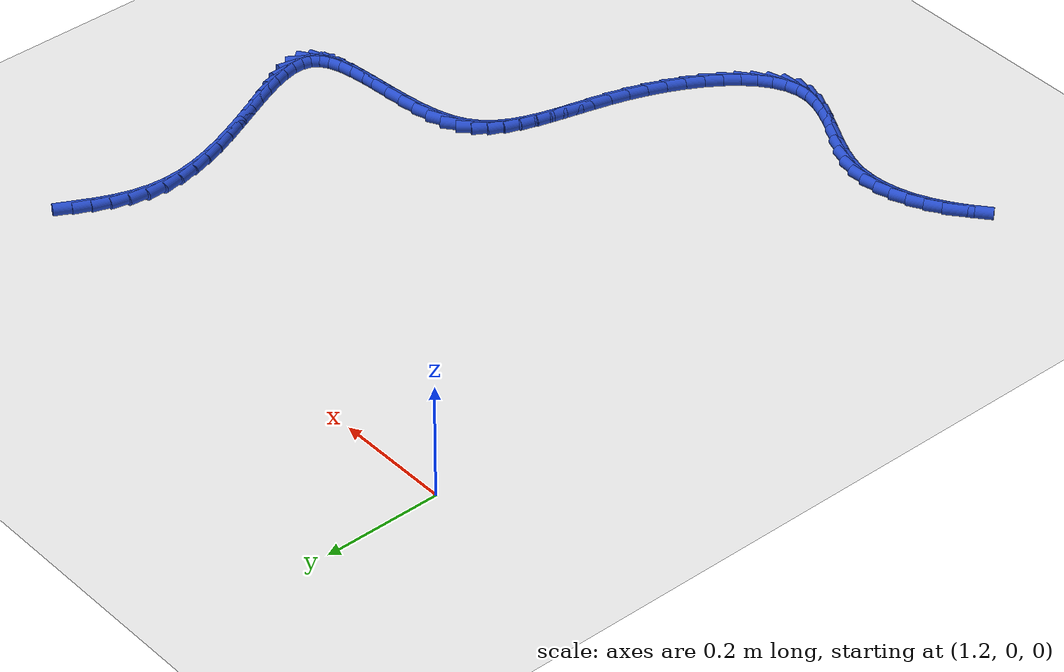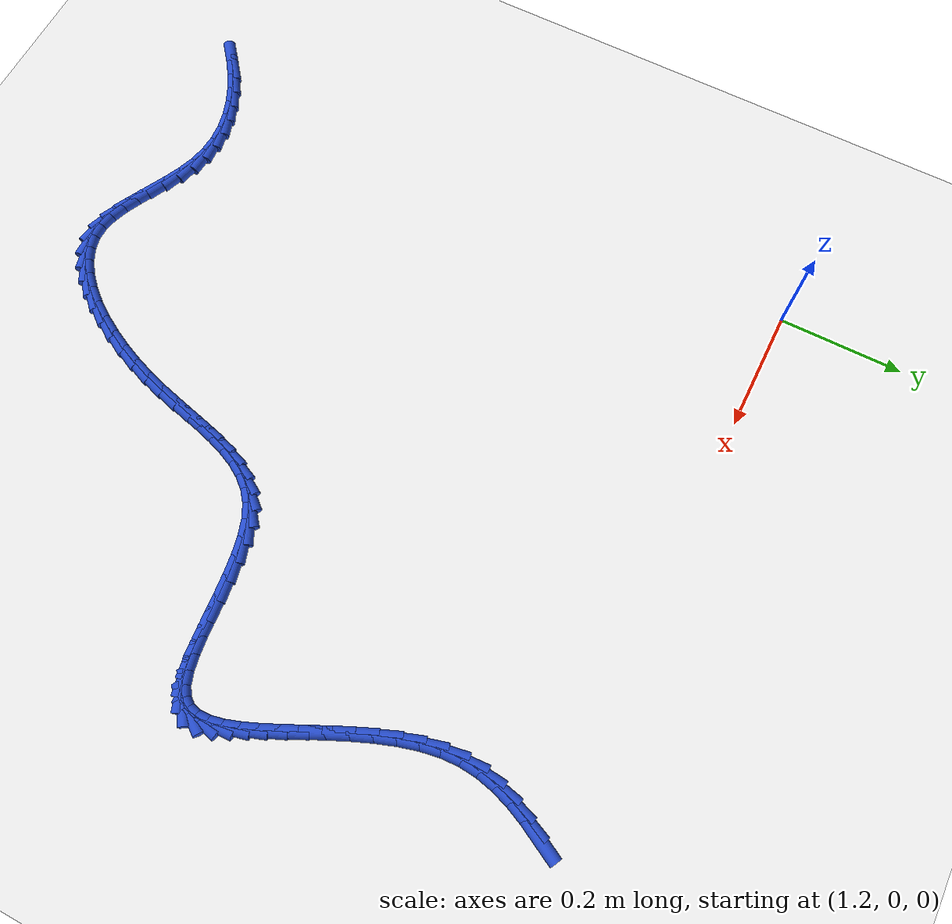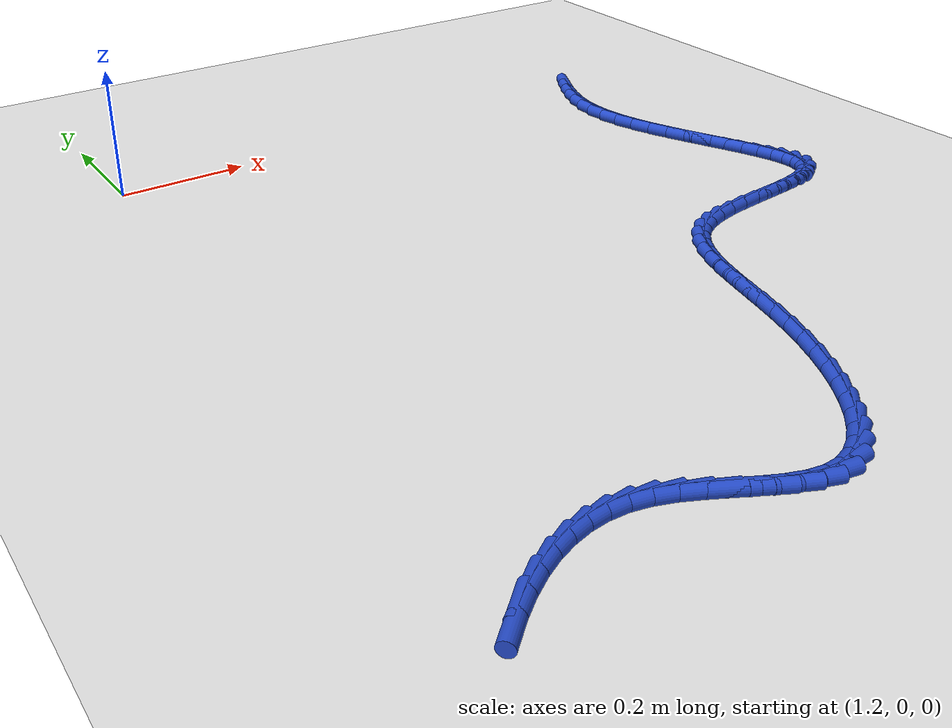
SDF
<sdf version="1.6">
 <world name="default">
  <model name="ground_plane">
   <static>1</static>
   <link name="link">
    <collision name="collision">
     <geometry><plane><normal>0 0 1</normal><size>100 100</size></plane></geometry>
     <surface><friction><ode><mu>100</mu><mu2>50</mu2></ode></friction></surface>
    </collision>
    <visual name="visual">
     <cast_shadows>0</cast_shadows>
     <geometry><plane><normal>0 0 1</normal><size>100 100</size></plane></geometry>
     <material>
      <script><uri>file://media/materials/scripts/gazebo.material</uri><name>Gazebo/WhiteGlow</name></script>
     </material>
    </visual>
   </link>
  </model>
  <model name="line">
   <link name="link_134">
    <pose>2.0774502353488344 -0.01090609988123959 0.01 0 1.57 1.0932529110515414</pose>
    <collision name="collision">
     <geometry><cylinder><radius>0.01</radius><length>0.08</length></cylinder></geometry>
    </collision>
    <visual name="visual">
     <material>
      <script><name>Gazebo/Blue</name><uri>file://media/materials/scripts/gazebo.material</uri></script>
     </material>
     <geometry><cylinder><radius>0.01</radius><length>0.08</length></cylinder></geometry>
    </visual>
   </link>
   <link name="link_135">
    <pose>2.0639154179885364 -0.03706071942310801 0.01 0 1.57 1.162538470376504</pose>
    <collision name="collision">
     <geometry><cylinder><radius>0.01</radius><length>0.08</length></cylinder></geometry>
    </collision>
    <visual name="visual">
     <material>
      <script><name>Gazebo/Blue</name><uri>file://media/materials/scripts/gazebo.material</uri></script>
     </material>
     <geometry><cylinder><radius>0.01</radius><length>0.08</length></cylinder></geometry>
    </visual>
   </link>
   <link name="link_136">
    <pose>2.052298679378893 -0.0639164101546138 0.01 0 1.57 1.2512004855072796</pose>
    <collision name="collision">
     <geometry><cylinder><radius>0.01</radius><length>0.08</length></cylinder></geometry>
    </collision>
    <visual name="visual">
     <material>
      <script><name>Gazebo/Blue</name><uri>file://media/materials/scripts/gazebo.material</uri></script>
     </material>
     <geometry><cylinder><radius>0.01</radius><length>0.08</length></cylinder></geometry>
    </visual>
   </link>
   <link name="link_137">
    <pose>2.0431659456747897 -0.09151267610247593 0.01 0 1.57 1.3596303096118438</pose>
    <collision name="collision">
     <geometry><cylinder><radius>0.01</radius><length>0.08</length></cylinder></geometry>
    </collision>
    <visual name="visual">
     <material>
      <script><name>Gazebo/Blue</name><uri>file://media/materials/scripts/gazebo.material</uri></script>
     </material>
     <geometry><cylinder><radius>0.01</radius><length>0.08</length></cylinder></geometry>
    </visual>
   </link>
   <link name="link_138">
    <pose>2.0370831430311114 -0.11988902129341622 0.01 0 1.57 1.4865003454374337</pose>
    <collision name="collision">
     <geometry><cylinder><radius>0.01</radius><length>0.08</length></cylinder></geometry>
    </collision>
    <visual name="visual">
     <material>
      <script><name>Gazebo/Blue</name><uri>file://media/materials/scripts/gazebo.material</uri></script>
     </material>
     <geometry><cylinder><radius>0.01</radius><length>0.08</length></cylinder></geometry>
    </visual>
   </link>
   <link name="link_139">
    <pose>2.0346161976027446 -0.14908494975415312 0.01 0 1.57 -1.5167567861571636</pose>
    <collision name="collision">
     <geometry><cylinder><radius>0.01</radius><length>0.08</length></cylinder></geometry>
    </collision>
    <visual name="visual">
     <material>
      <script><name>Gazebo/Blue</name><uri>file://media/materials/scripts/gazebo.material</uri></script>
     </material>
     <geometry><cylinder><radius>0.01</radius><length>0.08</length></cylinder></geometry>
    </visual>
   </link>
   <link name="link_140">
    <pose>2.036240681427246 -0.17911670401944943 0.01 0 1.57 -1.3961712051366055</pose>
    <collision name="collision">
     <geometry><cylinder><radius>0.01</radius><length>0.08</length></cylinder></geometry>
    </collision>
    <visual name="visual">
     <material>
      <script><name>Gazebo/Blue</name><uri>file://media/materials/scripts/gazebo.material</uri></script>
     </material>
     <geometry><cylinder><radius>0.01</radius><length>0.08</length></cylinder></geometry>
    </visual>
   </link>
   <link name="link_141">
    <pose>2.0416539210437605 -0.20980016883254068 0.01 0 1.57 -1.3035194613661267</pose>
    <collision name="collision">
     <geometry><cylinder><radius>0.01</radius><length>0.08</length></cylinder></geometry>
    </collision>
    <visual name="visual">
     <material>
      <script><name>Gazebo/Blue</name><uri>file://media/materials/scripts/gazebo.material</uri></script>
     </material>
     <geometry><cylinder><radius>0.01</radius><length>0.08</length></cylinder></geometry>
    </visual>
   </link>
   <link name="link_142">
    <pose>2.0501559662667965 -0.240848950815765 0.01 0 1.57 -1.2343130413607764</pose>
    <collision name="collision">
     <geometry><cylinder><radius>0.01</radius><length>0.08</length></cylinder></geometry>
    </collision>
    <visual name="visual">
     <material>
      <script><name>Gazebo/Blue</name><uri>file://media/materials/scripts/gazebo.material</uri></script>
     </material>
     <geometry><cylinder><radius>0.01</radius><length>0.08</length></cylinder></geometry>
    </visual>
   </link>
   <link name="link_143">
    <pose>2.0610436848263602 -0.27197583736999165 0.01 0 1.57 -1.184638508141586</pose>
    <collision name="collision">
     <geometry><cylinder><radius>0.01</radius><length>0.08</length></cylinder></geometry>
    </collision>
    <visual name="visual">
     <material>
      <script><name>Gazebo/Blue</name><uri>file://media/materials/scripts/gazebo.material</uri></script>
     </material>
     <geometry><cylinder><radius>0.01</radius><length>0.08</length></cylinder></geometry>
    </visual>
   </link>
   <link name="link_144">
    <pose>2.073613944452461 -0.30289361589608665 0.01 0 1.57 -1.1517756841449007</pose>
    <collision name="collision">
     <geometry><cylinder><radius>0.01</radius><length>0.08</length></cylinder></geometry>
    </collision>
    <visual name="visual">
     <material>
      <script><name>Gazebo/Blue</name><uri>file://media/materials/scripts/gazebo.material</uri></script>
     </material>
     <geometry><cylinder><radius>0.01</radius><length>0.08</length></cylinder></geometry>
    </visual>
   </link>
   <link name="link_145">
    <pose>2.0871636128751083 -0.33331507379491937 0.01 0 1.57 -1.1343101079626643</pose>
    <collision name="collision">
     <geometry><cylinder><radius>0.01</radius><length>0.08</length></cylinder></geometry>
    </collision>
    <visual name="visual">
     <material>
      <script><name>Gazebo/Blue</name><uri>file://media/materials/scripts/gazebo.material</uri></script>
     </material>
     <geometry><cylinder><radius>0.01</radius><length>0.08</length></cylinder></geometry>
    </visual>
   </link>
   <link name="link_146">
    <pose>2.1009895578243083 -0.3629529984673558 0.01 0 1.57 -1.1322237671472868</pose>
    <collision name="collision">
     <geometry><cylinder><radius>0.01</radius><length>0.08</length></cylinder></geometry>
    </collision>
    <visual name="visual">
     <material>
      <script><name>Gazebo/Blue</name><uri>file://media/materials/scripts/gazebo.material</uri></script>
     </material>
     <geometry><cylinder><radius>0.01</radius><length>0.08</length></cylinder></geometry>
    </visual>
   </link>
   <link name="link_147">
    <pose>2.114388647030071 -0.39152017731426514 0.01 0 1.57 -1.147180049405786</pose>
    <collision name="collision">
     <geometry><cylinder><radius>0.01</radius><length>0.08</length></cylinder></geometry>
    </collision>
    <visual name="visual">
     <material>
      <script><name>Gazebo/Blue</name><uri>file://media/materials/scripts/gazebo.material</uri></script>
     </material>
     <geometry><cylinder><radius>0.01</radius><length>0.08</length></cylinder></geometry>
    </visual>
   </link>
   <link name="link_148">
    <pose>2.1266577482224025 -0.41872939773651363 0.01 0 1.57 -1.1832163564298597</pose>
    <collision name="collision">
     <geometry><cylinder><radius>0.01</radius><length>0.08</length></cylinder></geometry>
    </collision>
    <visual name="visual">
     <material>
      <script><name>Gazebo/Blue</name><uri>file://media/materials/scripts/gazebo.material</uri></script>
     </material>
     <geometry><cylinder><radius>0.01</radius><length>0.08</length></cylinder></geometry>
    </visual>
   </link>
   <link name="link_149">
    <pose>2.1370937291313137 -0.4442934471349704 0.01 0 1.57 -1.2481888714591327</pose>
    <collision name="collision">
     <geometry><cylinder><radius>0.01</radius><length>0.08</length></cylinder></geometry>
    </collision>
    <visual name="visual">
     <material>
      <script><name>Gazebo/Blue</name><uri>file://media/materials/scripts/gazebo.material</uri></script>
     </material>
     <geometry><cylinder><radius>0.01</radius><length>0.08</length></cylinder></geometry>
    </visual>
   </link>
   <link name="link_150">
    <pose>2.144993457486811 -0.4679251129105016 0.01 0 1.57 -1.356488340821179</pose>
    <collision name="collision">
     <geometry><cylinder><radius>0.01</radius><length>0.08</length></cylinder></geometry>
    </collision>
    <visual name="visual">
     <material>
      <script><name>Gazebo/Blue</name><uri>file://media/materials/scripts/gazebo.material</uri></script>
     </material>
     <geometry><cylinder><radius>0.01</radius><length>0.08</length></cylinder></geometry>
    </visual>
   </link>
   <link name="link_151">
    <pose>2.149653801018904 -0.48933718246397573 0.01 0 1.57 -1.5328448917655946</pose>
    <collision name="collision">
     <geometry><cylinder><radius>0.01</radius><length>0.08</length></cylinder></geometry>
    </collision>
    <visual name="visual">
     <material>
      <script><name>Gazebo/Blue</name><uri>file://media/materials/scripts/gazebo.material</uri></script>
     </material>
     <geometry><cylinder><radius>0.01</radius><length>0.08</length></cylinder></geometry>
    </visual>
   </link>
   <link name="link_152">
    <pose>2.1503716274575995 -0.5082424431962609 0.01 0 1.57 1.3316671120980905</pose>
    <collision name="collision">
     <geometry><cylinder><radius>0.01</radius><length>0.08</length></cylinder></geometry>
    </collision>
    <visual name="visual">
     <material>
      <script><name>Gazebo/Blue</name><uri>file://media/materials/scripts/gazebo.material</uri></script>
     </material>
     <geometry><cylinder><radius>0.01</radius><length>0.08</length></cylinder></geometry>
    </visual>
   </link>
   <link name="link_153">
    <pose>2.1464438045329066 -0.5243536825082238 0.01 0 1.57 0.952100834290036</pose>
    <collision name="collision">
     <geometry><cylinder><radius>0.01</radius><length>0.08</length></cylinder></geometry>
    </collision>
    <visual name="visual">
     <material>
      <script><name>Gazebo/Blue</name><uri>file://media/materials/scripts/gazebo.material</uri></script>
     </material>
     <geometry><cylinder><radius>0.01</radius><length>0.08</length></cylinder></geometry>
    </visual>
   </link>
   <link name="link_154">
    <pose>2.1371672024552058 -0.5373836891941255 0.01 0 1.57 0.5789061264195159</pose>
    <collision name="collision">
     <geometry><cylinder><radius>0.01</radius><length>0.08</length></cylinder></geometry>
    </collision>
    <visual name="visual">
     <material>
      <script><name>Gazebo/Blue</name><uri>file://media/materials/scripts/gazebo.material</uri></script>
     </material>
     <geometry><cylinder><radius>0.01</radius><length>0.08</length></cylinder></geometry>
    </visual>
   </link>
   <link name="link_155">
    <pose>2.122132630888497 -0.5472103776881215 0.01 0 1.57 0.3405674633277442</pose>
    <collision name="collision">
     <geometry><cylinder><radius>0.01</radius><length>0.08</length></cylinder></geometry>
    </collision>
    <visual name="visual">
     <material>
      <script><name>Gazebo/Blue</name><uri>file://media/materials/scripts/gazebo.material</uri></script>
     </material>
     <geometry><cylinder><radius>0.01</radius><length>0.08</length></cylinder></geometry>
    </visual>
   </link>
   <link name="link_156">
    <pose>2.102035627599585 -0.5543322627984946 0.01 0 1.57 0.20613893020586105</pose>
    <collision name="collision">
     <geometry><cylinder><radius>0.01</radius><length>0.08</length></cylinder></geometry>
    </collision>
    <visual name="visual">
     <material>
      <script><name>Gazebo/Blue</name><uri>file://media/materials/scripts/gazebo.material</uri></script>
     </material>
     <geometry><cylinder><radius>0.01</radius><length>0.08</length></cylinder></geometry>
    </visual>
   </link>
   <link name="link_157">
    <pose>2.077831215494243 -0.559393629658293 0.01 0 1.57 0.13246392167090074</pose>
    <collision name="collision">
     <geometry><cylinder><radius>0.01</radius><length>0.08</length></cylinder></geometry>
    </collision>
    <visual name="visual">
     <material>
      <script><name>Gazebo/Blue</name><uri>file://media/materials/scripts/gazebo.material</uri></script>
     </material>
     <geometry><cylinder><radius>0.01</radius><length>0.08</length></cylinder></geometry>
    </visual>
   </link>
   <link name="link_158">
    <pose>2.050474417478246 -0.5630387634005666 0.01 0 1.57 0.09691308751004221</pose>
    <collision name="collision">
     <geometry><cylinder><radius>0.01</radius><length>0.08</length></cylinder></geometry>
    </collision>
    <visual name="visual">
     <material>
      <script><name>Gazebo/Blue</name><uri>file://media/materials/scripts/gazebo.material</uri></script>
     </material>
     <geometry><cylinder><radius>0.01</radius><length>0.08</length></cylinder></geometry>
    </visual>
   </link>
   <link name="link_159">
    <pose>2.02092025645737 -0.565911949158364 0.01 0 1.57 0.08891541788054003</pose>
    <collision name="collision">
     <geometry><cylinder><radius>0.01</radius><length>0.08</length></cylinder></geometry>
    </collision>
    <visual name="visual">
     <material>
      <script><name>Gazebo/Blue</name><uri>file://media/materials/scripts/gazebo.material</uri></script>
     </material>
     <geometry><cylinder><radius>0.01</radius><length>0.08</length></cylinder></geometry>
    </visual>
   </link>
   <link name="link_160">
    <pose>1.9901237553373874 -0.5686574720647343 0.01 0 1.57 0.10456397142356744</pose>
    <collision name="collision">
     <geometry><cylinder><radius>0.01</radius><length>0.08</length></cylinder></geometry>
    </collision>
    <visual name="visual">
     <material>
      <script><name>Gazebo/Blue</name><uri>file://media/materials/scripts/gazebo.material</uri></script>
     </material>
     <geometry><cylinder><radius>0.01</radius><length>0.08</length></cylinder></geometry>
    </visual>
   </link>
   <link name="link_161">
    <pose>1.959039937024074 -0.5719196172527273 0.01 0 1.57 0.144405865262256</pose>
    <collision name="collision">
     <geometry><cylinder><radius>0.01</radius><length>0.08</length></cylinder></geometry>
    </collision>
    <visual name="visual">
     <material>
      <script><name>Gazebo/Blue</name><uri>file://media/materials/scripts/gazebo.material</uri></script>
     </material>
     <geometry><cylinder><radius>0.01</radius><length>0.08</length></cylinder></geometry>
    </visual>
   </link>
   <link name="link_162">
    <pose>1.9286238244232041 -0.5763426698553912 0.01 0 1.57 0.21302622651412825</pose>
    <collision name="collision">
     <geometry><cylinder><radius>0.01</radius><length>0.08</length></cylinder></geometry>
    </collision>
    <visual name="visual">
     <material>
      <script><name>Gazebo/Blue</name><uri>file://media/materials/scripts/gazebo.material</uri></script>
     </material>
     <geometry><cylinder><radius>0.01</radius><length>0.08</length></cylinder></geometry>
    </visual>
   </link>
   <link name="link_163">
    <pose>1.899830440440552 -0.5825709150057758 0.01 0 1.57 0.3196610669276842</pose>
    <collision name="collision">
     <geometry><cylinder><radius>0.01</radius><length>0.08</length></cylinder></geometry>
    </collision>
    <visual name="visual">
     <material>
      <script><name>Gazebo/Blue</name><uri>file://media/materials/scripts/gazebo.material</uri></script>
     </material>
     <geometry><cylinder><radius>0.01</radius><length>0.08</length></cylinder></geometry>
    </visual>
   </link>
   <link name="link_164">
    <pose>1.8736148079818926 -0.5912486378369297 0.01 0 1.57 0.47831829030931294</pose>
    <collision name="collision">
     <geometry><cylinder><radius>0.01</radius><length>0.08</length></cylinder></geometry>
    </collision>
    <visual name="visual">
     <material>
      <script><name>Gazebo/Blue</name><uri>file://media/materials/scripts/gazebo.material</uri></script>
     </material>
     <geometry><cylinder><radius>0.01</radius><length>0.08</length></cylinder></geometry>
    </visual>
   </link>
   <link name="link_165">
    <pose>1.8509224627120853 -0.6030140560664354 0.01 0 1.57 0.6777662237603823</pose>
    <collision name="collision">
     <geometry><cylinder><radius>0.01</radius><length>0.08</length></cylinder></geometry>
    </collision>
    <visual name="visual">
     <material>
      <script><name>Gazebo/Blue</name><uri>file://media/materials/scripts/gazebo.material</uri></script>
     </material>
     <geometry><cylinder><radius>0.01</radius><length>0.08</length></cylinder></geometry>
    </visual>
   </link>
   <link name="link_166">
    <pose>1.8321299724490392 -0.6181415129887372 0.01 0 1.57 0.8686075298367084</pose>
    <collision name="collision">
     <geometry><cylinder><radius>0.01</radius><length>0.08</length></cylinder></geometry>
    </collision>
    <visual name="visual">
     <material>
      <script><name>Gazebo/Blue</name><uri>file://media/materials/scripts/gazebo.material</uri></script>
     </material>
     <geometry><cylinder><radius>0.01</radius><length>0.08</length></cylinder></geometry>
    </visual>
   </link>
   <link name="link_167">
    <pose>1.8167321581132885 -0.6363414445608929 0.01 0 1.57 1.0295503698261044</pose>
    <collision name="collision">
     <geometry><cylinder><radius>0.01</radius><length>0.08</length></cylinder></geometry>
    </collision>
    <visual name="visual">
     <material>
      <script><name>Gazebo/Blue</name><uri>file://media/materials/scripts/gazebo.material</uri></script>
     </material>
     <geometry><cylinder><radius>0.01</radius><length>0.08</length></cylinder></geometry>
    </visual>
   </link>
   <link name="link_168">
    <pose>1.8041480093402746 -0.6572757900362037 0.01 0 1.57 1.1532059016564693</pose>
    <collision name="collision">
     <geometry><cylinder><radius>0.01</radius><length>0.08</length></cylinder></geometry>
    </collision>
    <visual name="visual">
     <material>
      <script><name>Gazebo/Blue</name><uri>file://media/materials/scripts/gazebo.material</uri></script>
     </material>
     <geometry><cylinder><radius>0.01</radius><length>0.08</length></cylinder></geometry>
    </visual>
   </link>
   <link name="link_169">
    <pose>1.7937965157654385 -0.6806064886679739 0.01 0 1.57 1.2406733771108949</pose>
    <collision name="collision">
     <geometry><cylinder><radius>0.01</radius><length>0.08</length></cylinder></geometry>
    </collision>
    <visual name="visual">
     <material>
      <script><name>Gazebo/Blue</name><uri>file://media/materials/scripts/gazebo.material</uri></script>
     </material>
     <geometry><cylinder><radius>0.01</radius><length>0.08</length></cylinder></geometry>
    </visual>
   </link>
   <link name="link_170">
    <pose>1.7850966670242228 -0.7059954797095049 0.01 0 1.57 1.296466667631985</pose>
    <collision name="collision">
     <geometry><cylinder><radius>0.01</radius><length>0.08</length></cylinder></geometry>
    </collision>
    <visual name="visual">
     <material>
      <script><name>Gazebo/Blue</name><uri>file://media/materials/scripts/gazebo.material</uri></script>
     </material>
     <geometry><cylinder><radius>0.01</radius><length>0.08</length></cylinder></geometry>
    </visual>
   </link>
   <link name="link_171">
    <pose>1.7774674527520677 -0.7331047024140996 0.01 0 1.57 1.3252646976321405</pose>
    <collision name="collision">
     <geometry><cylinder><radius>0.01</radius><length>0.08</length></cylinder></geometry>
    </collision>
    <visual name="visual">
     <material>
      <script><name>Gazebo/Blue</name><uri>file://media/materials/scripts/gazebo.material</uri></script>
     </material>
     <geometry><cylinder><radius>0.01</radius><length>0.08</length></cylinder></geometry>
    </visual>
   </link>
   <link name="link_172">
    <pose>1.770327862584415 -0.7615960960350617 0.01 0 1.57 1.330695853305861</pose>
    <collision name="collision">
     <geometry><cylinder><radius>0.01</radius><length>0.08</length></cylinder></geometry>
    </collision>
    <visual name="visual">
     <material>
      <script><name>Gazebo/Blue</name><uri>file://media/materials/scripts/gazebo.material</uri></script>
     </material>
     <geometry><cylinder><radius>0.01</radius><length>0.08</length></cylinder></geometry>
    </visual>
   </link>
   <link name="link_173">
    <pose>1.7630968861567053 -0.7911315998256927 0.01 0 1.57 1.3151721171689479</pose>
    <collision name="collision">
     <geometry><cylinder><radius>0.01</radius><length>0.08</length></cylinder></geometry>
    </collision>
    <visual name="visual">
     <material>
      <script><name>Gazebo/Blue</name><uri>file://media/materials/scripts/gazebo.material</uri></script>
     </material>
     <geometry><cylinder><radius>0.01</radius><length>0.08</length></cylinder></geometry>
    </visual>
   </link>
   <link name="link_174">
    <pose>1.7551935131043814 -0.8213731530392967 0.01 0 1.57 1.2801222060296293</pose>
    <collision name="collision">
     <geometry><cylinder><radius>0.01</radius><length>0.08</length></cylinder></geometry>
    </collision>
    <visual name="visual">
     <material>
      <script><name>Gazebo/Blue</name><uri>file://media/materials/scripts/gazebo.material</uri></script>
     </material>
     <geometry><cylinder><radius>0.01</radius><length>0.08</length></cylinder></geometry>
    </visual>
   </link>
   <link name="link_175">
    <pose>1.7460367603669606 -0.8519826865221694 0.01 0 1.57 1.2299225263607907</pose>
    <collision name="collision">
     <geometry><cylinder><radius>0.01</radius><length>0.08</length></cylinder></geometry>
    </collision>
    <visual name="visual">
     <material>
      <script><name>Gazebo/Blue</name><uri>file://media/materials/scripts/gazebo.material</uri></script>
     </material>
     <geometry><cylinder><radius>0.01</radius><length>0.08</length></cylinder></geometry>
    </visual>
   </link>
   <link name="link_176">
    <pose>1.7351833688739546 -0.8825797255009997 0.01 0 1.57 1.1757462017554536</pose>
    <collision name="collision">
     <geometry><cylinder><radius>0.01</radius><length>0.08</length></cylinder></geometry>
    </collision>
    <visual name="visual">
     <material>
      <script><name>Gazebo/Blue</name><uri>file://media/materials/scripts/gazebo.material</uri></script>
     </material>
     <geometry><cylinder><radius>0.01</radius><length>0.08</length></cylinder></geometry>
    </visual>
   </link>
   <link name="link_177">
    <pose>1.7226479408699753 -0.9126428183634825 0.01 0 1.57 1.1177327570510494</pose>
    <collision name="collision">
     <geometry><cylinder><radius>0.01</radius><length>0.08</length></cylinder></geometry>
    </collision>
    <visual name="visual">
     <material>
      <script><name>Gazebo/Blue</name><uri>file://media/materials/scripts/gazebo.material</uri></script>
     </material>
     <geometry><cylinder><radius>0.01</radius><length>0.08</length></cylinder></geometry>
    </visual>
   </link>
   <link name="link_178">
    <pose>1.7085401048228195 -0.9416212546450745 0.01 0 1.57 1.0531401267169784</pose>
    <collision name="collision">
     <geometry><cylinder><radius>0.01</radius><length>0.08</length></cylinder></geometry>
    </collision>
    <visual name="visual">
     <material>
      <script><name>Gazebo/Blue</name><uri>file://media/materials/scripts/gazebo.material</uri></script>
     </material>
     <geometry><cylinder><radius>0.01</radius><length>0.08</length></cylinder></geometry>
    </visual>
   </link>
   <link name="link_179">
    <pose>1.6929694892002853 -0.9689643238812274 0.01 0 1.57 0.9786104053811043</pose>
    <collision name="collision">
     <geometry><cylinder><radius>0.01</radius><length>0.08</length></cylinder></geometry>
    </collision>
    <visual name="visual">
     <material>
      <script><name>Gazebo/Blue</name><uri>file://media/materials/scripts/gazebo.material</uri></script>
     </material>
     <geometry><cylinder><radius>0.01</radius><length>0.08</length></cylinder></geometry>
    </visual>
   </link>
   <link name="link_180">
    <pose>1.6760457224701701 -0.9941213156073981 0.01 0 1.57 0.8898010376946286</pose>
    <collision name="collision">
     <geometry><cylinder><radius>0.01</radius><length>0.08</length></cylinder></geometry>
    </collision>
    <visual name="visual">
     <material>
      <script><name>Gazebo/Blue</name><uri>file://media/materials/scripts/gazebo.material</uri></script>
     </material>
     <geometry><cylinder><radius>0.01</radius><length>0.08</length></cylinder></geometry>
    </visual>
   </link>
   <link name="link_181">
    <pose>1.6578784331002716 -1.0165415193590388 0.01 0 1.57 0.7810146061982245</pose>
    <collision name="collision">
     <geometry><cylinder><radius>0.01</radius><length>0.08</length></cylinder></geometry>
    </collision>
    <visual name="visual">
     <material>
      <script><name>Gazebo/Blue</name><uri>file://media/materials/scripts/gazebo.material</uri></script>
     </material>
     <geometry><cylinder><radius>0.01</radius><length>0.08</length></cylinder></geometry>
    </visual>
   </link>
   <link name="link_182">
    <pose>1.6385772495583868 -1.0356742246716049 0.01 0 1.57 0.64508649445099</pose>
    <collision name="collision">
     <geometry><cylinder><radius>0.01</radius><length>0.08</length></cylinder></geometry>
    </collision>
    <visual name="visual">
     <material>
      <script><name>Gazebo/Blue</name><uri>file://media/materials/scripts/gazebo.material</uri></script>
     </material>
     <geometry><cylinder><radius>0.01</radius><length>0.08</length></cylinder></geometry>
    </visual>
   </link>
   <link name="link_183">
    <pose>1.6182518003123136 -1.0509687210805512 0.01 0 1.57 0.474344205356357</pose>
    <collision name="collision">
     <geometry><cylinder><radius>0.01</radius><length>0.08</length></cylinder></geometry>
    </collision>
    <visual name="visual">
     <material>
      <script><name>Gazebo/Blue</name><uri>file://media/materials/scripts/gazebo.material</uri></script>
     </material>
     <geometry><cylinder><radius>0.01</radius><length>0.08</length></cylinder></geometry>
    </visual>
   </link>
   <link name="link_184">
    <pose>1.5970117138298494 -1.0618742981213312 0.01 0 1.57 0.26429399316883023</pose>
    <collision name="collision">
     <geometry><cylinder><radius>0.01</radius><length>0.08</length></cylinder></geometry>
    </collision>
    <visual name="visual">
     <material>
      <script><name>Gazebo/Blue</name><uri>file://media/materials/scripts/gazebo.material</uri></script>
     </material>
     <geometry><cylinder><radius>0.01</radius><length>0.08</length></cylinder></geometry>
    </visual>
   </link>
   <link name="link_185">
    <pose>1.5749666185787912 -1.0678402453293998 0.01 0 1.57 0.021277038347814442</pose>
    <collision name="collision">
     <geometry><cylinder><radius>0.01</radius><length>0.08</length></cylinder></geometry>
    </collision>
    <visual name="visual">
     <material>
      <script><name>Gazebo/Blue</name><uri>file://media/materials/scripts/gazebo.material</uri></script>
     </material>
     <geometry><cylinder><radius>0.01</radius><length>0.08</length></cylinder></geometry>
    </visual>
   </link>
   <link name="link_186">
    <pose>1.552225874823808 -1.0683241740353722 0.01 0 1.57 -0.20635589687424621</pose>
    <collision name="collision">
     <geometry><cylinder><radius>0.01</radius><length>0.08</length></cylinder></geometry>
    </collision>
    <visual name="visual">
     <material>
      <script><name>Gazebo/Blue</name><uri>file://media/materials/scripts/gazebo.material</uri></script>
     </material>
     <geometry><cylinder><radius>0.01</radius><length>0.08</length></cylinder></geometry>
    </visual>
   </link>
   <link name="link_187">
    <pose>1.5288778007634072 -1.0634365878935286 0.01 0 1.57 -0.3614515688843384</pose>
    <collision name="collision">
     <geometry><cylinder><radius>0.01</radius><length>0.08</length></cylinder></geometry>
    </collision>
    <visual name="visual">
     <material>
      <script><name>Gazebo/Blue</name><uri>file://media/materials/scripts/gazebo.material</uri></script>
     </material>
     <geometry><cylinder><radius>0.01</radius><length>0.08</length></cylinder></geometry>
    </visual>
   </link>
   <link name="link_188">
    <pose>1.504974881233217 -1.054399826600277 0.01 0 1.57 -0.45213931590990847</pose>
    <collision name="collision">
     <geometry><cylinder><radius>0.01</radius><length>0.08</length></cylinder></geometry>
    </collision>
    <visual name="visual">
     <material>
      <script><name>Gazebo/Blue</name><uri>file://media/materials/scripts/gazebo.material</uri></script>
     </material>
     <geometry><cylinder><radius>0.01</radius><length>0.08</length></cylinder></geometry>
    </visual>
   </link>
   <link name="link_189">
    <pose>1.4805661091765443 -1.04254457613666 0.01 0 1.57 -0.4925019906062081</pose>
    <collision name="collision">
     <geometry><cylinder><radius>0.01</radius><length>0.08</length></cylinder></geometry>
    </collision>
    <visual name="visual">
     <material>
      <script><name>Gazebo/Blue</name><uri>file://media/materials/scripts/gazebo.material</uri></script>
     </material>
     <geometry><cylinder><radius>0.01</radius><length>0.08</length></cylinder></geometry>
    </visual>
   </link>
   <link name="link_190">
    <pose>1.4557004775366977 -1.02920152248372 0.01 0 1.57 -0.49060313646979953</pose>
    <collision name="collision">
     <geometry><cylinder><radius>0.01</radius><length>0.08</length></cylinder></geometry>
    </collision>
    <visual name="visual">
     <material>
      <script><name>Gazebo/Blue</name><uri>file://media/materials/scripts/gazebo.material</uri></script>
     </material>
     <geometry><cylinder><radius>0.01</radius><length>0.08</length></cylinder></geometry>
    </visual>
   </link>
   <link name="link_191">
    <pose>1.430426979256986 -1.0157013516225009 0.01 0 1.57 -0.44825101045711585</pose>
    <collision name="collision">
     <geometry><cylinder><radius>0.01</radius><length>0.08</length></cylinder></geometry>
    </collision>
    <visual name="visual">
     <material>
      <script><name>Gazebo/Blue</name><uri>file://media/materials/scripts/gazebo.material</uri></script>
     </material>
     <geometry><cylinder><radius>0.01</radius><length>0.08</length></cylinder></geometry>
    </visual>
   </link>
   <link name="link_192">
    <pose>1.4047946072807178 -1.0033747495340453 0.01 0 1.57 -0.36194367405663025</pose>
    <collision name="collision">
     <geometry><cylinder><radius>0.01</radius><length>0.08</length></cylinder></geometry>
    </collision>
    <visual name="visual">
     <material>
      <script><name>Gazebo/Blue</name><uri>file://media/materials/scripts/gazebo.material</uri></script>
     </material>
     <geometry><cylinder><radius>0.01</radius><length>0.08</length></cylinder></geometry>
    </visual>
   </link>
   <link name="link_193">
    <pose>1.3788523545512008 -0.9935524021993951 0.01 0 1.57 -0.22635347244242904</pose>
    <collision name="collision">
     <geometry><cylinder><radius>0.01</radius><length>0.08</length></cylinder></geometry>
    </collision>
    <visual name="visual">
     <material>
      <script><name>Gazebo/Blue</name><uri>file://media/materials/scripts/gazebo.material</uri></script>
     </material>
     <geometry><cylinder><radius>0.01</radius><length>0.08</length></cylinder></geometry>
    </visual>
   </link>
   <link name="link_194">
    <pose>1.3526522110803585 -0.987518504308231 0.01 0 1.57 -0.06854091061997547</pose>
    <collision name="collision">
     <geometry><cylinder><radius>0.01</radius><length>0.08</length></cylinder></geometry>
    </collision>
    <visual name="visual">
     <material>
      <script><name>Gazebo/Blue</name><uri>file://media/materials/scripts/gazebo.material</uri></script>
     </material>
     <geometry><cylinder><radius>0.01</radius><length>0.08</length></cylinder></geometry>
    </visual>
   </link>
   <link name="link_195">
    <pose>1.326300815837219 -0.985709522014864 0.01 0 1.57 0.07998903632745295</pose>
    <collision name="collision">
     <geometry><cylinder><radius>0.01</radius><length>0.08</length></cylinder></geometry>
    </collision>
    <visual name="visual">
     <material>
      <script><name>Gazebo/Blue</name><uri>file://media/materials/scripts/gazebo.material</uri></script>
     </material>
     <geometry><cylinder><radius>0.01</radius><length>0.08</length></cylinder></geometry>
    </visual>
   </link>
   <link name="link_196">
    <pose>1.2999525325886407 -0.9878216022596593 0.01 0 1.57 0.21446532122642475</pose>
    <collision name="collision">
     <geometry><cylinder><radius>0.01</radius><length>0.08</length></cylinder></geometry>
    </collision>
    <visual name="visual">
     <material>
      <script><name>Gazebo/Blue</name><uri>file://media/materials/scripts/gazebo.material</uri></script>
     </material>
     <geometry><cylinder><radius>0.01</radius><length>0.08</length></cylinder></geometry>
    </visual>
   </link>
   <link name="link_197">
    <pose>1.2737633293653787 -0.993526006233015 0.01 0 1.57 0.3336428925133397</pose>
    <collision name="collision">
     <geometry><cylinder><radius>0.01</radius><length>0.08</length></cylinder></geometry>
    </collision>
    <visual name="visual">
     <material>
      <script><name>Gazebo/Blue</name><uri>file://media/materials/scripts/gazebo.material</uri></script>
     </material>
     <geometry><cylinder><radius>0.01</radius><length>0.08</length></cylinder></geometry>
    </visual>
   </link>
   <link name="link_198">
    <pose>1.2478891741981866 -1.0024939951253284 0.01 0 1.57 0.43817884412981717</pose>
    <collision name="collision">
     <geometry><cylinder><radius>0.01</radius><length>0.08</length></cylinder></geometry>
    </collision>
    <visual name="visual">
     <material>
      <script><name>Gazebo/Blue</name><uri>file://media/materials/scripts/gazebo.material</uri></script>
     </material>
     <geometry><cylinder><radius>0.01</radius><length>0.08</length></cylinder></geometry>
    </visual>
   </link>
   <link name="link_199">
    <pose>1.2224860351178206 -1.0143968301269968 0.01 0 1.57 0.5297647518420104</pose>
    <collision name="collision">
     <geometry><cylinder><radius>0.01</radius><length>0.08</length></cylinder></geometry>
    </collision>
    <visual name="visual">
     <material>
      <script><name>Gazebo/Blue</name><uri>file://media/materials/scripts/gazebo.material</uri></script>
     </material>
     <geometry><cylinder><radius>0.01</radius><length>0.08</length></cylinder></geometry>
    </visual>
   </link>
   <link name="link_200">
    <pose>1.1977098801550332 -1.028905772428418 0.01 0 1.57 0.6104760966290927</pose>
    <collision name="collision">
     <geometry><cylinder><radius>0.01</radius><length>0.08</length></cylinder></geometry>
    </collision>
    <visual name="visual">
     <material>
      <script><name>Gazebo/Blue</name><uri>file://media/materials/scripts/gazebo.material</uri></script>
     </material>
     <geometry><cylinder><radius>0.01</radius><length>0.08</length></cylinder></geometry>
    </visual>
   </link>
   <link name="link_201">
    <pose>1.1737166773405805 -1.0456920832199892 0.01 0 1.57 0.6824037059385625</pose>
    <collision name="collision">
     <geometry><cylinder><radius>0.01</radius><length>0.08</length></cylinder></geometry>
    </collision>
    <visual name="visual">
     <material>
      <script><name>Gazebo/Blue</name><uri>file://media/materials/scripts/gazebo.material</uri></script>
     </material>
     <geometry><cylinder><radius>0.01</radius><length>0.08</length></cylinder></geometry>
    </visual>
   </link>
  </model>
 </world>
</sdf>
